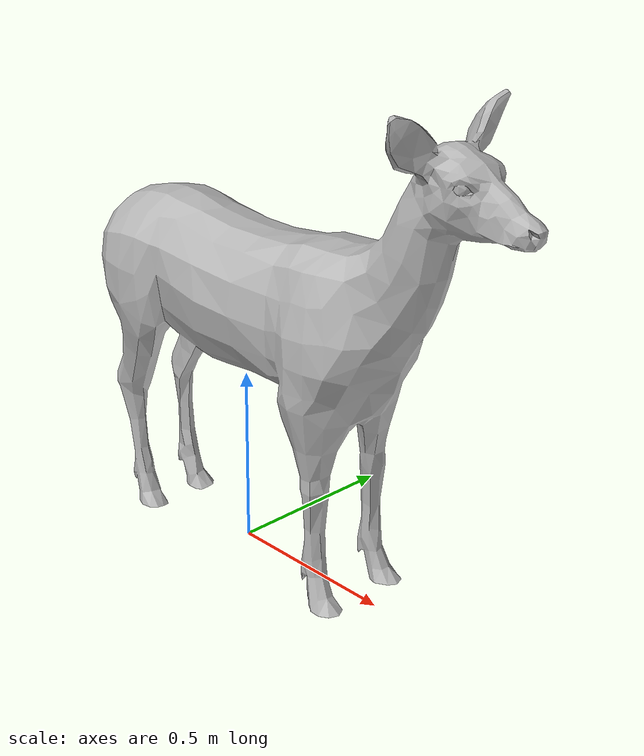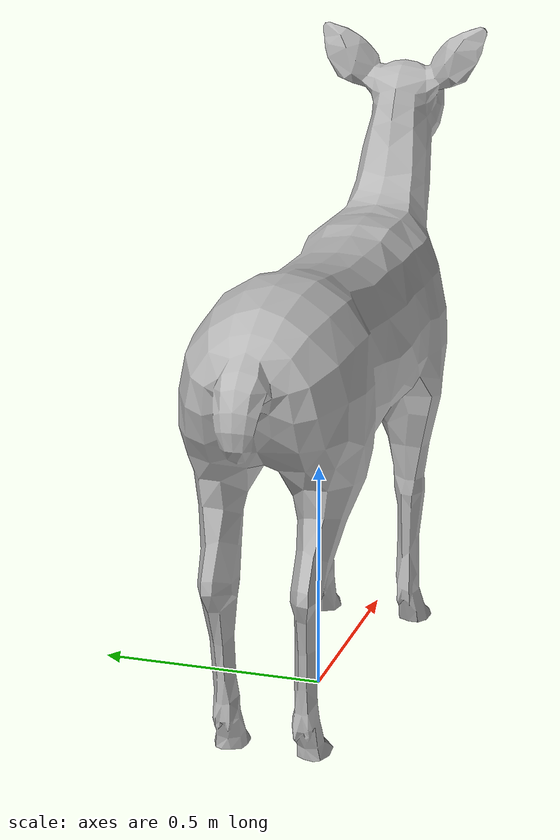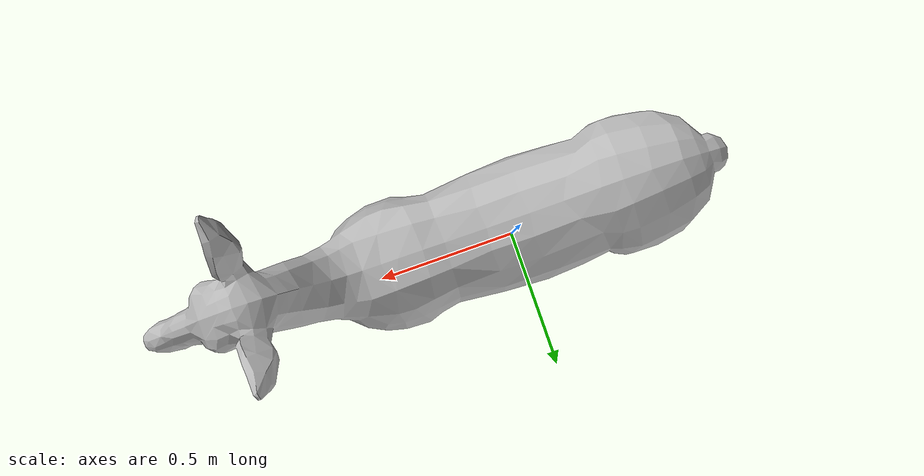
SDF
<?xml version="1.0" ?>
<sdf version="1.6">
  <model name="deer">
    <static>true</static>
    <link name="body">
      <pose>0 0 0 0 0 0</pose>
      <visual name="visual">
        <geometry>
          <mesh>
            <uri>model://deer/meshes/deer.obj</uri>
            <scale>1.0 1.0 1.0</scale>
          </mesh>
        </geometry>
        <material>
          <script>
            <uri>model://deer/materials/scripts</uri>
            <uri>model://deer/materials/textures</uri>
            <name>Animal/Deer</name>
          </script>
        </material>
      </visual>
      <collision name="collision">
        <pose>0 0 0.7 0 0 0</pose>
        <geometry>
          <box>
            <size>1.4 0.6 1.4</size>
          </box>
        </geometry>
      </collision>
    </link>
  </model>
</sdf>
